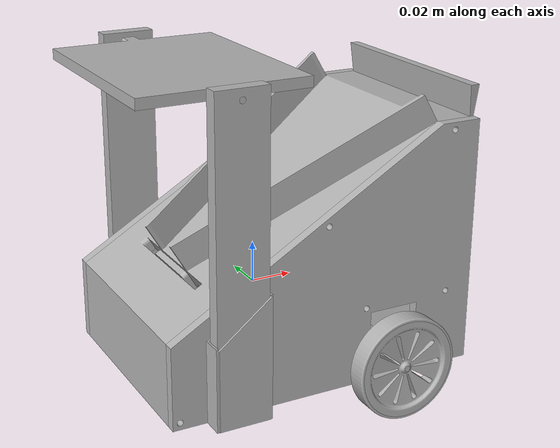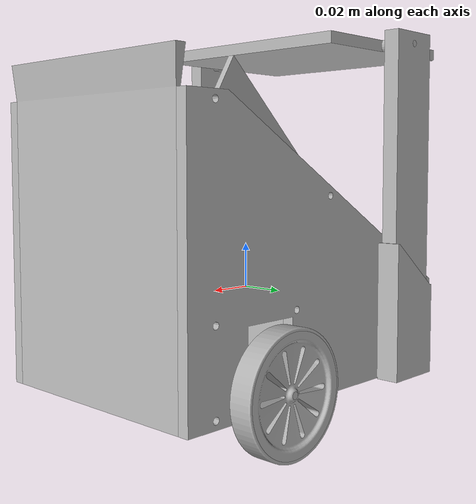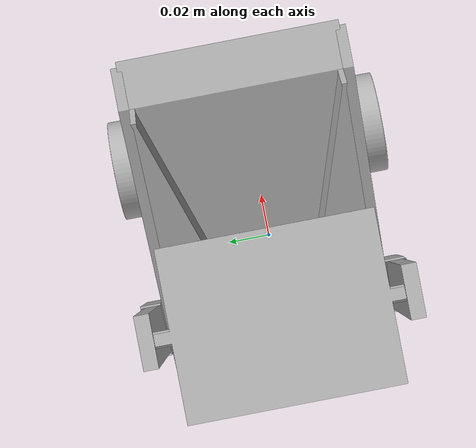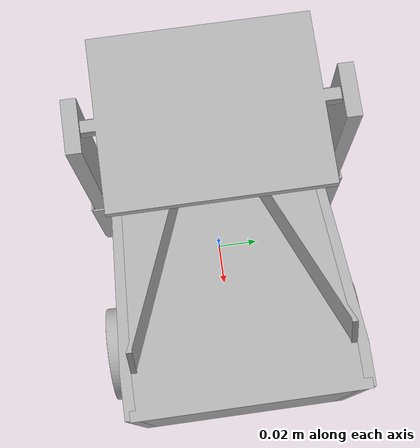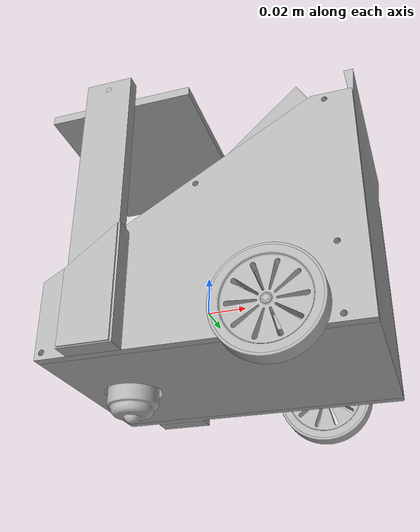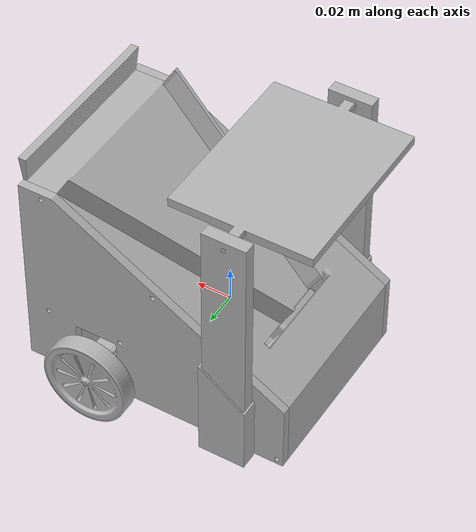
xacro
<?xml version="1.0" ?>
<robot name="old_grid_bot" xmlns:xacro="http://www.ros.org/wiki/xacro">

<xacro:include filename="$(find old_grid_bot_description)/urdf/materials.xacro" />
<xacro:include filename="$(find old_grid_bot_description)/urdf/old_grid_bot.trans" />
<xacro:include filename="$(find old_grid_bot_description)/urdf/old_grid_bot.gazebo" />
<link name="base_link">
  <inertial>
    <origin rpy="0 0 0" xyz="0.030583158947851654 0.0024807572051702784 0.007996607847452842"/>
    <mass value="0.485950277701604"/>
    <inertia ixx="0.001146" ixy="4e-06" ixz="-0.000239" iyy="0.001934" iyz="-0.0" izz="0.001644"/>
  </inertial>
  <visual>
    <origin rpy="0 0 0" xyz="0 0 0"/>
    <geometry>
      <mesh filename="package://old_grid_bot_description/meshes/base_link.stl" scale="0.001 0.001 0.001"/>
    </geometry>
    <material name="silver"/>
  </visual>
  <collision>
    <origin rpy="0 0 0" xyz="0 0 0"/>
    <geometry>
      <mesh filename="package://old_grid_bot_description/meshes/base_link.stl" scale="0.001 0.001 0.001"/>
    </geometry>
  </collision>
</link>

<link name="servo_motor_1">
  <inertial>
    <origin rpy="0 0 0" xyz="0.010587734438734408 0.0084001186327211 0.006274355737184533"/>
    <mass value="0.008064275407847855"/>
    <inertia ixx="1e-06" ixy="-0.0" ixz="-0.0" iyy="0.0" iyz="-0.0" izz="1e-06"/>
  </inertial>
  <visual>
    <origin rpy="0 0 0" xyz="0.031681 -0.002315 -0.005433"/>
    <geometry>
      <mesh filename="package://old_grid_bot_description/meshes/servo_motor_1.stl" scale="0.001 0.001 0.001"/>
    </geometry>
    <material name="silver"/>
  </visual>
  <collision>
    <origin rpy="0 0 0" xyz="0.031681 -0.002315 -0.005433"/>
    <geometry>
      <mesh filename="package://old_grid_bot_description/meshes/servo_motor_1.stl" scale="0.001 0.001 0.001"/>
    </geometry>
  </collision>
</link>

<link name="servo_actuator_1">
  <inertial>
    <origin rpy="0 0 0" xyz="0.004722447291877686 4.322909012404591e-07 -0.005026760619318825"/>
    <mass value="0.005292303265120139"/>
    <inertia ixx="1e-06" ixy="0.0" ixz="0.0" iyy="1e-06" iyz="0.0" izz="1e-06"/>
  </inertial>
  <visual>
    <origin rpy="0 0 0" xyz="0.035552 -0.002315 -0.003139"/>
    <geometry>
      <mesh filename="package://old_grid_bot_description/meshes/servo_actuator_1.stl" scale="0.001 0.001 0.001"/>
    </geometry>
    <material name="silver"/>
  </visual>
  <collision>
    <origin rpy="0 0 0" xyz="0.035552 -0.002315 -0.003139"/>
    <geometry>
      <mesh filename="package://old_grid_bot_description/meshes/servo_actuator_1.stl" scale="0.001 0.001 0.001"/>
    </geometry>
  </collision>
</link>

<link name="side_pane_2">
  <inertial>
    <origin rpy="0 0 0" xyz="-0.05195651370572106 -0.0024995677090985935 -0.06871232084610449"/>
    <mass value="0.07399807568510863"/>
    <inertia ixx="6.8e-05" ixy="0.0" ixz="-4.2e-05" iyy="0.000205" iyz="-0.0" izz="0.000138"/>
  </inertial>
  <visual>
    <origin rpy="0 0 0" xyz="-0.075503 0.047685 -0.079034"/>
    <geometry>
      <mesh filename="package://old_grid_bot_description/meshes/side_pane_2.stl" scale="0.001 0.001 0.001"/>
    </geometry>
    <material name="silver"/>
  </visual>
  <collision>
    <origin rpy="0 0 0" xyz="-0.075503 0.047685 -0.079034"/>
    <geometry>
      <mesh filename="package://old_grid_bot_description/meshes/side_pane_2.stl" scale="0.001 0.001 0.001"/>
    </geometry>
  </collision>
</link>

<link name="side_pane_1">
  <inertial>
    <origin rpy="0 0 0" xyz="-0.05195651370572118 0.0025004322909012305 -0.06871232084610446"/>
    <mass value="0.07399807568510863"/>
    <inertia ixx="6.8e-05" ixy="0.0" ixz="-4.2e-05" iyy="0.000205" iyz="-0.0" izz="0.000138"/>
  </inertial>
  <visual>
    <origin rpy="0 0 0" xyz="-0.075503 -0.052315 -0.079034"/>
    <geometry>
      <mesh filename="package://old_grid_bot_description/meshes/side_pane_1.stl" scale="0.001 0.001 0.001"/>
    </geometry>
    <material name="silver"/>
  </visual>
  <collision>
    <origin rpy="0 0 0" xyz="-0.075503 -0.052315 -0.079034"/>
    <geometry>
      <mesh filename="package://old_grid_bot_description/meshes/side_pane_1.stl" scale="0.001 0.001 0.001"/>
    </geometry>
  </collision>
</link>

<link name="connector_rod_1">
  <inertial>
    <origin rpy="0 0 0" xyz="3.890800441760933e-07 -0.06749956770909944 -2.161915329777775e-07"/>
    <mass value="0.0011336594170111678"/>
    <inertia ixx="2e-06" ixy="-0.0" ixz="0.0" iyy="0.0" iyz="-0.0" izz="2e-06"/>
  </inertial>
  <visual>
    <origin rpy="0 0 0" xyz="-0.046539 -0.069315 0.028466"/>
    <geometry>
      <mesh filename="package://old_grid_bot_description/meshes/connector_rod_1.stl" scale="0.001 0.001 0.001"/>
    </geometry>
    <material name="silver"/>
  </visual>
  <collision>
    <origin rpy="0 0 0" xyz="-0.046539 -0.069315 0.028466"/>
    <geometry>
      <mesh filename="package://old_grid_bot_description/meshes/connector_rod_1.stl" scale="0.001 0.001 0.001"/>
    </geometry>
  </collision>
</link>

<link name="left_wheel_1">
  <inertial>
    <origin rpy="0 0 0" xyz="3.8680151746156577e-07 0.0042454206608824735 -2.2070271555110765e-07"/>
    <mass value="0.01607890765683399"/>
    <inertia ixx="3e-06" ixy="-0.0" ixz="-0.0" iyy="6e-06" iyz="-0.0" izz="3e-06"/>
  </inertial>
  <visual>
    <origin rpy="0 0 0" xyz="-0.046539 0.065685 0.028466"/>
    <geometry>
      <mesh filename="package://old_grid_bot_description/meshes/left_wheel_1.stl" scale="0.001 0.001 0.001"/>
    </geometry>
    <material name="silver"/>
  </visual>
  <collision>
    <origin rpy="0 0 0" xyz="-0.046539 0.065685 0.028466"/>
    <geometry>
      <mesh filename="package://old_grid_bot_description/meshes/left_wheel_1.stl" scale="0.001 0.001 0.001"/>
    </geometry>
  </collision>
</link>

<link name="right_wheel_1">
  <inertial>
    <origin rpy="0 0 0" xyz="3.8680151760034365e-07 -0.00424455421333067 -2.2070271556498544e-07"/>
    <mass value="0.01607890765683399"/>
    <inertia ixx="3e-06" ixy="-0.0" ixz="-0.0" iyy="6e-06" iyz="-0.0" izz="3e-06"/>
  </inertial>
  <visual>
    <origin rpy="0 0 0" xyz="-0.046539 -0.069315 0.028466"/>
    <geometry>
      <mesh filename="package://old_grid_bot_description/meshes/right_wheel_1.stl" scale="0.001 0.001 0.001"/>
    </geometry>
    <material name="silver"/>
  </visual>
  <collision>
    <origin rpy="0 0 0" xyz="-0.046539 -0.069315 0.028466"/>
    <geometry>
      <mesh filename="package://old_grid_bot_description/meshes/right_wheel_1.stl" scale="0.001 0.001 0.001"/>
    </geometry>
  </collision>
</link>

<link name="castor_wheel_1">
  <inertial>
    <origin rpy="0 0 0" xyz="-4.60694217933183e-06 1.876423122246793e-05 -0.007087258397097125"/>
    <mass value="0.005527871060012059"/>
    <inertia ixx="1e-06" ixy="-0.0" ixz="-0.0" iyy="1e-06" iyz="0.0" izz="1e-06"/>
  </inertial>
  <visual>
    <origin rpy="0 0 0" xyz="0.040997 -0.002315 0.031466"/>
    <geometry>
      <mesh filename="package://old_grid_bot_description/meshes/castor_wheel_1.stl" scale="0.001 0.001 0.001"/>
    </geometry>
    <material name="silver"/>
  </visual>
  <collision>
    <origin rpy="0 0 0" xyz="0.040997 -0.002315 0.031466"/>
    <geometry>
      <mesh filename="package://old_grid_bot_description/meshes/castor_wheel_1.stl" scale="0.001 0.001 0.001"/>
    </geometry>
  </collision>
</link>

<link name="left_wheel_tyre_1">
  <inertial>
    <origin rpy="0 0 0" xyz="3.8908012213456633e-07 0.005000419728007896 -2.1619153321023044e-07"/>
    <mass value="0.0005281032093428708"/>
    <inertia ixx="0.0" ixy="0.0" ixz="-0.0" iyy="0.0" iyz="0.0" izz="0.0"/>
  </inertial>
  <visual>
    <origin rpy="0 0 0" xyz="-0.046539 0.06644 0.028466"/>
    <geometry>
      <mesh filename="package://old_grid_bot_description/meshes/left_wheel_tyre_1.stl" scale="0.001 0.001 0.001"/>
    </geometry>
    <material name="silver"/>
  </visual>
  <collision>
    <origin rpy="0 0 0" xyz="-0.046539 0.06644 0.028466"/>
    <geometry>
      <mesh filename="package://old_grid_bot_description/meshes/left_wheel_tyre_1.stl" scale="0.001 0.001 0.001"/>
    </geometry>
  </collision>
</link>

<link name="right_wheel_tyre_1">
  <inertial>
    <origin rpy="0 0 0" xyz="3.890801222733442e-07 0.005000444853794736 -2.1619153322410822e-07"/>
    <mass value="0.0005281032093428708"/>
    <inertia ixx="0.0" ixy="-0.0" ixz="-0.0" iyy="0.0" iyz="0.0" izz="0.0"/>
  </inertial>
  <visual>
    <origin rpy="0 0 0" xyz="-0.046539 -0.06007 0.028466"/>
    <geometry>
      <mesh filename="package://old_grid_bot_description/meshes/right_wheel_tyre_1.stl" scale="0.001 0.001 0.001"/>
    </geometry>
    <material name="silver"/>
  </visual>
  <collision>
    <origin rpy="0 0 0" xyz="-0.046539 -0.06007 0.028466"/>
    <geometry>
      <mesh filename="package://old_grid_bot_description/meshes/right_wheel_tyre_1.stl" scale="0.001 0.001 0.001"/>
    </geometry>
  </collision>
</link>

<link name="marker_holder_base_1_1">
  <inertial>
    <origin rpy="0 0 0" xyz="0.0012659322751551808 -0.005330648790179797 -0.00599458556090238"/>
    <mass value="0.0043956000000000195"/>
    <inertia ixx="1e-06" ixy="-0.0" ixz="-0.0" iyy="1e-06" iyz="-0.0" izz="0.0"/>
  </inertial>
  <visual>
    <origin rpy="0 0 0" xyz="0.035997 0.052685 0.007466"/>
    <geometry>
      <mesh filename="package://old_grid_bot_description/meshes/marker_holder_base_1_1.stl" scale="0.001 0.001 0.001"/>
    </geometry>
    <material name="silver"/>
  </visual>
  <collision>
    <origin rpy="0 0 0" xyz="0.035997 0.052685 0.007466"/>
    <geometry>
      <mesh filename="package://old_grid_bot_description/meshes/marker_holder_base_1_1.stl" scale="0.001 0.001 0.001"/>
    </geometry>
  </collision>
</link>

<link name="marker_holder_base_2_1">
  <inertial>
    <origin rpy="0 0 0" xyz="0.0012659322751550212 0.005669351209820032 -0.005994585560902398"/>
    <mass value="0.0043956000000000195"/>
    <inertia ixx="1e-06" ixy="-0.0" ixz="-0.0" iyy="1e-06" iyz="-0.0" izz="0.0"/>
  </inertial>
  <visual>
    <origin rpy="0 0 0" xyz="0.035997 -0.057315 0.007466"/>
    <geometry>
      <mesh filename="package://old_grid_bot_description/meshes/marker_holder_base_2_1.stl" scale="0.001 0.001 0.001"/>
    </geometry>
    <material name="silver"/>
  </visual>
  <collision>
    <origin rpy="0 0 0" xyz="0.035997 -0.057315 0.007466"/>
    <geometry>
      <mesh filename="package://old_grid_bot_description/meshes/marker_holder_base_2_1.stl" scale="0.001 0.001 0.001"/>
    </geometry>
  </collision>
</link>

<link name="sidesupport_1_1">
  <inertial>
    <origin rpy="0 0 0" xyz="1.6650938913093105e-07 4.322909012768883e-07 0.074867587733285"/>
    <mass value="0.20567408133829188"/>
    <inertia ixx="0.000385" ixy="0.0" ixz="0.0" iyy="0.000395" iyz="0.0" izz="1.2e-05"/>
  </inertial>
  <visual>
    <origin rpy="0 0 0" xyz="0.035997 0.058185 0.036466"/>
    <geometry>
      <mesh filename="package://old_grid_bot_description/meshes/sidesupport_1_1.stl" scale="0.001 0.001 0.001"/>
    </geometry>
    <material name="silver"/>
  </visual>
  <collision>
    <origin rpy="0 0 0" xyz="0.035997 0.058185 0.036466"/>
    <geometry>
      <mesh filename="package://old_grid_bot_description/meshes/sidesupport_1_1.stl" scale="0.001 0.001 0.001"/>
    </geometry>
  </collision>
</link>

<link name="sidesupport_2_1">
  <inertial>
    <origin rpy="0 0 0" xyz="1.665093889505198e-07 4.322909011311715e-07 0.07486758773328496"/>
    <mass value="0.20567408133829188"/>
    <inertia ixx="0.000385" ixy="0.0" ixz="0.0" iyy="0.000395" iyz="-0.0" izz="1.2e-05"/>
  </inertial>
  <visual>
    <origin rpy="0 0 0" xyz="0.035997 -0.062815 0.036466"/>
    <geometry>
      <mesh filename="package://old_grid_bot_description/meshes/sidesupport_2_1.stl" scale="0.001 0.001 0.001"/>
    </geometry>
    <material name="silver"/>
  </visual>
  <collision>
    <origin rpy="0 0 0" xyz="0.035997 -0.062815 0.036466"/>
    <geometry>
      <mesh filename="package://old_grid_bot_description/meshes/sidesupport_2_1.stl" scale="0.001 0.001 0.001"/>
    </geometry>
  </collision>
</link>

<link name="aruco_1">
  <inertial>
    <origin rpy="0 0 0" xyz="1.6650938946399796e-07 0.06355010767934195 -2.161915332449249e-07"/>
    <mass value="0.3185682790928806"/>
    <inertia ixx="0.000276" ixy="0.0" ixz="-0.0" iyy="0.000168" iyz="0.0" izz="0.000443"/>
  </inertial>
  <visual>
    <origin rpy="0 0 0" xyz="0.035997 0.061685 -0.108534"/>
    <geometry>
      <mesh filename="package://old_grid_bot_description/meshes/aruco_1.stl" scale="0.001 0.001 0.001"/>
    </geometry>
    <material name="silver"/>
  </visual>
  <collision>
    <origin rpy="0 0 0" xyz="0.035997 0.061685 -0.108534"/>
    <geometry>
      <mesh filename="package://old_grid_bot_description/meshes/aruco_1.stl" scale="0.001 0.001 0.001"/>
    </geometry>
  </collision>
</link>

<joint name="servo_fix" type="fixed">
  <origin rpy="0 0 0" xyz="-0.031681 0.002315 0.005433"/>
  <parent link="base_link"/>
  <child link="servo_motor_1"/>
</joint>

<joint name="servo_joint" type="revolute">
  <origin rpy="0 0 0" xyz="-0.003871 0.0 -0.002294"/>
  <parent link="servo_motor_1"/>
  <child link="servo_actuator_1"/>
  <axis xyz="0.860292 0.0 0.509802"/>
  <limit effort="100" lower="0.0" upper="3.141593" velocity="100"/>
</joint>

<joint name="left_pane_fix" type="fixed">
  <origin rpy="0 0 0" xyz="0.075503 -0.047685 0.079034"/>
  <parent link="base_link"/>
  <child link="side_pane_2"/>
</joint>

<joint name="right_pane_fix" type="fixed">
  <origin rpy="0 0 0" xyz="0.075503 0.052315 0.079034"/>
  <parent link="base_link"/>
  <child link="side_pane_1"/>
</joint>

<joint name="connector_fix" type="fixed">
  <origin rpy="0 0 0" xyz="0.046539 0.069315 -0.028466"/>
  <parent link="base_link"/>
  <child link="connector_rod_1"/>
</joint>

<joint name="left_wheel_joint" type="continuous">
  <origin rpy="0 0 0" xyz="0.0 -0.135 0.0"/>
  <parent link="connector_rod_1"/>
  <child link="left_wheel_1"/>
  <axis xyz="-0.0 -1.0 -0.0"/>
</joint>

<joint name="right_wheel_joint" type="continuous">
  <origin rpy="0 0 0" xyz="0.0 0.0 0.0"/>
  <parent link="connector_rod_1"/>
  <child link="right_wheel_1"/>
  <axis xyz="0.0 1.0 0.0"/>
</joint>

<joint name="castor_joint" type="fixed">
  <origin rpy="0 0 0" xyz="-0.040997 0.002315 -0.031466"/>
  <parent link="base_link"/>
  <child link="castor_wheel_1"/>
</joint>

<joint name="left_tyre_fix" type="fixed">
  <origin rpy="0 0 0" xyz="0.0 -0.000755 0.0"/>
  <parent link="left_wheel_1"/>
  <child link="left_wheel_tyre_1"/>
</joint>

<joint name="right_tyre_fix" type="fixed">
  <origin rpy="0 0 0" xyz="0.0 -0.009245 0.0"/>
  <parent link="right_wheel_1"/>
  <child link="right_wheel_tyre_1"/>
</joint>

<joint name="holder_fix_1" type="fixed">
  <origin rpy="0 0 0" xyz="-0.1115 -0.005 -0.0865"/>
  <parent link="side_pane_2"/>
  <child link="marker_holder_base_1_1"/>
</joint>

<joint name="holder_fix_2" type="fixed">
  <origin rpy="0 0 0" xyz="-0.1115 0.005 -0.0865"/>
  <parent link="side_pane_1"/>
  <child link="marker_holder_base_2_1"/>
</joint>

<joint name="holder_link_1" type="fixed">
  <origin rpy="0 0 0" xyz="0.0 -0.0055 -0.029"/>
  <parent link="marker_holder_base_1_1"/>
  <child link="sidesupport_1_1"/>
</joint>

<joint name="holder_link_2" type="fixed">
  <origin rpy="0 0 0" xyz="0.0 0.0055 -0.029"/>
  <parent link="marker_holder_base_2_1"/>
  <child link="sidesupport_2_1"/>
</joint>

<joint name="aruco_fix" type="fixed">
  <origin rpy="0 0 0" xyz="0.0 -0.0035 0.145"/>
  <parent link="sidesupport_1_1"/>
  <child link="aruco_1"/>
</joint>

</robot>

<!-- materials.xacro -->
<robot name="old_grid_bot" xmlns:xacro="http://www.ros.org/wiki/xacro" >

<material name="silver">
  <color rgba="0.700 0.700 0.700 1.000"/>
</material>

</robot>

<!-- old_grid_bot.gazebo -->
<robot name="old_grid_bot" xmlns:xacro="http://www.ros.org/wiki/xacro" >

<xacro:property name="body_color" value="Gazebo/Red" />
<xacro:property name="side_color" value="Gazebo/Green" />
<xacro:property name="link_color" value="Gazebo/Blue" />
<xacro:property name="tire_color" value="Gazebo/Black" />
<xacro:property name="rim_color" value="Gazebo/Yellow" />

<gazebo>
  <plugin filename="libgazebo_ros_control.so" name="control"/>
</gazebo>
<gazebo>
  <plugin name="differential_drive_controller" filename="libgazebo_ros_diff_drive.so">

    <!-- Plugin update rate in Hz -->
    <updateRate>10</updateRate>

    <!-- Name of left joint, defaults to `left_joint` -->
    <leftJoint>left_wheel_joint</leftJoint>

    <!-- Name of right joint, defaults to `right_joint` -->
    <rightJoint>right_wheel_joint</rightJoint>

    <!-- Wheel acceleration, in rad/s^2, defaults to 0.0 rad/s^2 -->
    <wheelAcceleration>1.0</wheelAcceleration>

    <!-- Maximum torque which the wheels can produce, in Nm, defaults to 5 Nm -->
    <wheelTorque>20</wheelTorque>

    <!-- Topic to receive geometry_msgs/Twist message commands, defaults to `cmd_vel` -->
    <commandTopic>cmd_vel</commandTopic>

    <!-- Topic to publish nav_msgs/Odometry messages, defaults to `odom` -->
    <odometryTopic>odom</odometryTopic>

    <!-- Odometry frame, defaults to `odom` -->
    <odometryFrame>odom</odometryFrame>

    <!-- Robot frame to calculate odometry from, defaults to `base_footprint` -->
    <robotBaseFrame>base_link</robotBaseFrame>

    <!-- Odometry source, 0 for ENCODER, 1 for WORLD, defaults to WORLD -->
    <odometrySource>1</odometrySource>

    <!-- Set to true to publish transforms for the wheel links, defaults to false -->
    <publishWheelTF>true</publishWheelTF>

    <!-- Set to true to publish transforms for the odometry, defaults to true -->
    <publishOdom>true</publishOdom>

    <!-- Set to true to publish sensor_msgs/JointState on /joint_states for the wheel joints, defaults to false -->
    <publishWheelJointState>true</publishWheelJointState>

    <!-- Set to true to swap right and left wheels, defaults to true -->
    <legacyMode>false</legacyMode>
  </plugin>
</gazebo>
<gazebo reference="base_link">
  <material>${body_color}</material>
  <mu1>0.2</mu1>
  <mu2>0.2</mu2>
  <selfCollide>true</selfCollide>
  <gravity>true</gravity>
</gazebo>

<gazebo reference="servo_motor_1">
  <material>${rim_color}</material>
  <mu1>0.2</mu1>
  <mu2>0.2</mu2>
  <selfCollide>true</selfCollide>
</gazebo>

<gazebo reference="servo_actuator_1">
  <material>${link_color}</material>
  <mu1>0.2</mu1>
  <mu2>0.2</mu2>
  <selfCollide>true</selfCollide>
</gazebo>

<gazebo reference="side_pane_2">
  <material>${side_color}</material>
  <mu1>0.2</mu1>
  <mu2>0.2</mu2>
  <selfCollide>true</selfCollide>
</gazebo>

<gazebo reference="side_pane_1">
  <material>${side_color}</material>
  <mu1>0.2</mu1>
  <mu2>0.2</mu2>
  <selfCollide>true</selfCollide>
</gazebo>

<gazebo reference="connector_rod_1">
  <material>${link_color}</material>
  <mu1>0.2</mu1>
  <mu2>0.2</mu2>
  <selfCollide>true</selfCollide>
</gazebo>

<gazebo reference="left_wheel_1">
  <material>${rim_color}</material>
  <mu1>0.2</mu1>
  <mu2>0.2</mu2>
  <selfCollide>true</selfCollide>
</gazebo>

<gazebo reference="right_wheel_1">
  <material>${rim_color}</material>
  <mu1>0.2</mu1>
  <mu2>0.2</mu2>
  <selfCollide>true</selfCollide>
</gazebo>

<gazebo reference="castor_wheel_1">
  <material>${rim_color}</material>
  <mu1>0.2</mu1>
  <mu2>0.2</mu2>
  <selfCollide>true</selfCollide>
</gazebo>

<gazebo reference="left_wheel_tyre_1">
  <material>${tire_color}</material>
  <mu1>0.2</mu1>
  <mu2>0.2</mu2>
  <selfCollide>true</selfCollide>
</gazebo>

<gazebo reference="right_wheel_tyre_1">
  <material>${tire_color}</material>
  <mu1>0.2</mu1>
  <mu2>0.2</mu2>
  <selfCollide>true</selfCollide>
</gazebo>

<gazebo reference="marker_holder_base_1_1">
  <material>${link_color}</material>
  <mu1>0.2</mu1>
  <mu2>0.2</mu2>
  <selfCollide>true</selfCollide>
</gazebo>

<gazebo reference="marker_holder_base_2_1">
  <material>${link_color}</material>
  <mu1>0.2</mu1>
  <mu2>0.2</mu2>
  <selfCollide>true</selfCollide>
</gazebo>

<gazebo reference="sidesupport_1_1">
  <material>${link_color}</material>
  <mu1>0.2</mu1>
  <mu2>0.2</mu2>
  <selfCollide>true</selfCollide>
</gazebo>

<gazebo reference="sidesupport_2_1">
  <material>${link_color}</material>
  <mu1>0.2</mu1>
  <mu2>0.2</mu2>
  <selfCollide>true</selfCollide>
</gazebo>

<gazebo reference="aruco_1">
  <material>${body_color}</material>
  <mu1>0.2</mu1>
  <mu2>0.2</mu2>
  <selfCollide>true</selfCollide>
</gazebo>

</robot>
